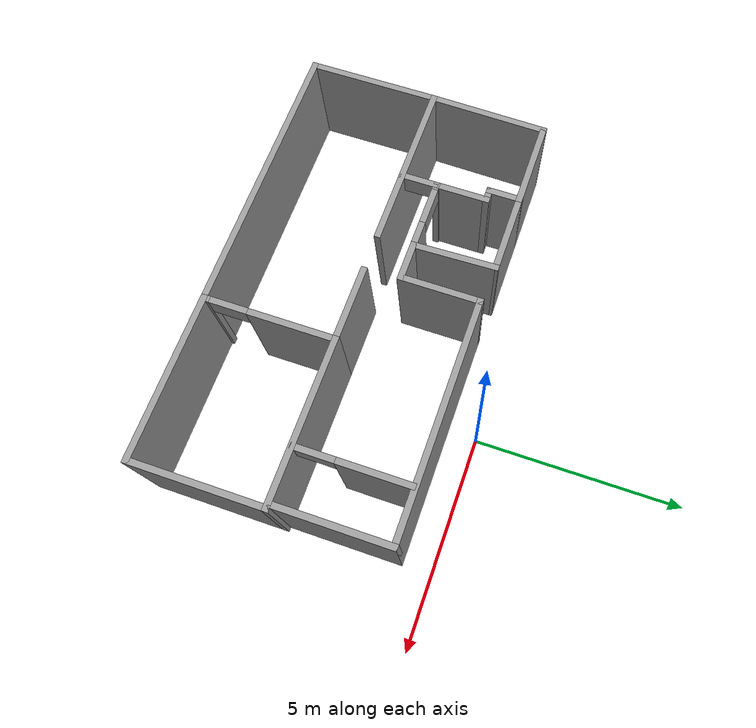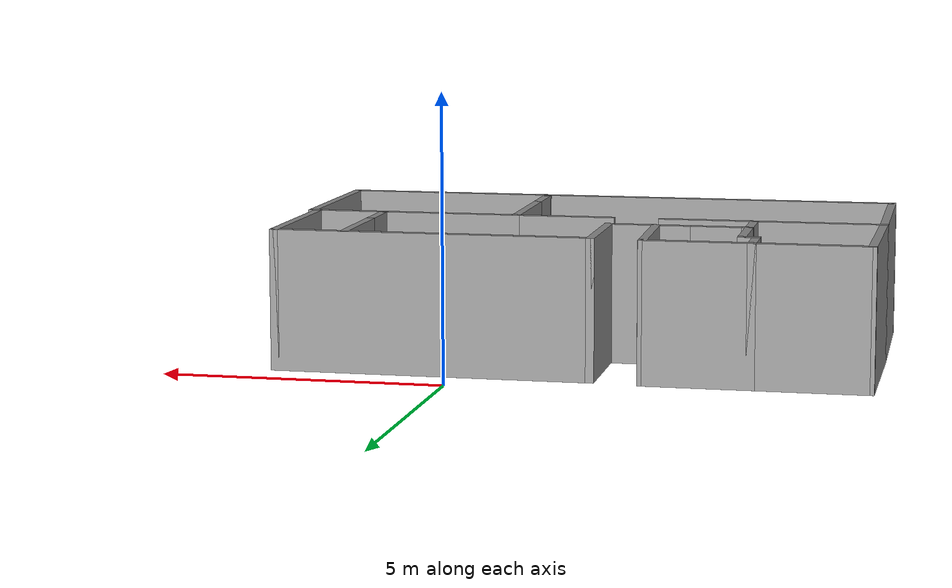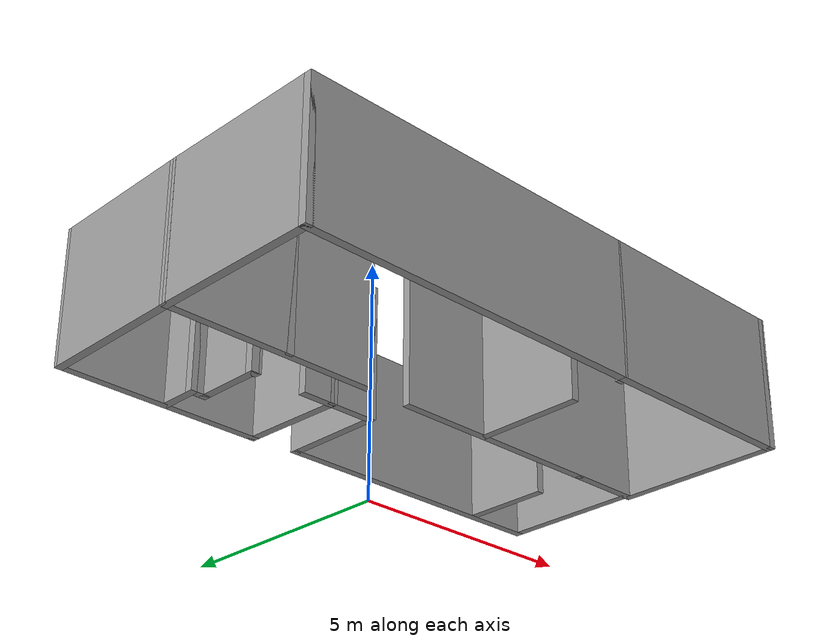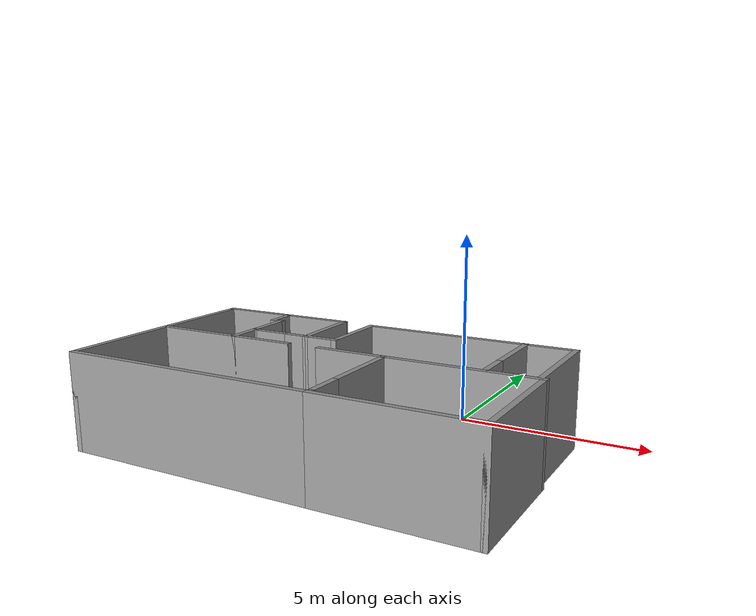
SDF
<?xml version='1.0'?>
<sdf version='1.7'>
  <model name='living_room'>
    <pose>-1.95067 -3.3225 0 0 -0 0</pose>
    <link name='Wall_10'>
      <collision name='Wall_10_Collision'>
        <geometry>
          <box>
            <size>4.1 0.15 2.5</size>
          </box>
        </geometry>
        <pose>0 0 1.25 0 -0 0</pose>
      </collision>
      <visual name='Wall_10_Visual'>
        <pose>0 0 1.25 0 -0 0</pose>
        <geometry>
          <box>
            <size>4.1 0.15 2.5</size>
          </box>
        </geometry>
        <material>
          <script>
            <uri>file://media/materials/scripts/gazebo.material</uri>
            <name>Gazebo/Grey</name>
          </script>
          <ambient>1 1 1 1</ambient>
        </material>
        <meta>
          <layer>0</layer>
        </meta>
      </visual>
      <pose>-3.27433 -0.1475 0 0 -0 0</pose>
    </link>
    <link name='Wall_17'>
      <collision name='Wall_17_Collision'>
        <geometry>
          <box>
            <size>6.8 0.15 2.5</size>
          </box>
        </geometry>
        <pose>0 0 1.25 0 -0 0</pose>
      </collision>
      <visual name='Wall_17_Visual'>
        <pose>0 0 1.25 0 -0 0</pose>
        <geometry>
          <box>
            <size>6.8 0.15 2.5</size>
          </box>
        </geometry>
        <material>
          <script>
            <uri>file://media/materials/scripts/gazebo.material</uri>
            <name>Gazebo/Grey</name>
          </script>
          <ambient>1 1 1 1</ambient>
        </material>
        <meta>
          <layer>0</layer>
        </meta>
      </visual>
      <pose>-1.92433 -3.2475 0 0 -0 0</pose>
    </link>
    <link name='Wall_20'>
      <pose>1.40067 -1.6975 0 0 -0 1.5708</pose>
      <visual name='Wall_20_Visual_0'>
        <pose>-1.5175 0 1.25 0 -0 0</pose>
        <geometry>
          <box>
            <size>0.215 0.15 2.5</size>
          </box>
        </geometry>
        <material>
          <script>
            <uri>file://media/materials/scripts/gazebo.material</uri>
            <name>Gazebo/Grey</name>
          </script>
          <ambient>1 1 1 1</ambient>
        </material>
        <meta>
          <layer>0</layer>
        </meta>
      </visual>
      <collision name='Wall_20_Collision_0'>
        <geometry>
          <box>
            <size>0.215 0.15 2.5</size>
          </box>
        </geometry>
        <pose>-1.5175 0 1.25 0 -0 0</pose>
      </collision>
      <visual name='Wall_20_Visual_1'>
        <pose>0.5575 0 1.25 0 -0 0</pose>
        <geometry>
          <box>
            <size>2.135 0.15 2.5</size>
          </box>
        </geometry>
        <material>
          <script>
            <uri>file://media/materials/scripts/gazebo.material</uri>
            <name>Gazebo/Grey</name>
          </script>
          <ambient>1 1 1 1</ambient>
        </material>
        <meta>
          <layer>0</layer>
        </meta>
      </visual>
      <collision name='Wall_20_Collision_1'>
        <geometry>
          <box>
            <size>2.135 0.15 2.5</size>
          </box>
        </geometry>
        <pose>0.5575 0 1.25 0 -0 0</pose>
      </collision>
      <visual name='Wall_20_Visual_2'>
        <pose>-0.96 0 2.25 0 -0 0</pose>
        <geometry>
          <box>
            <size>0.9 0.15 0.5</size>
          </box>
        </geometry>
        <material>
          <script>
            <uri>file://media/materials/scripts/gazebo.material</uri>
            <name>Gazebo/Grey</name>
          </script>
          <ambient>1 1 1 1</ambient>
        </material>
        <meta>
          <layer>0</layer>
        </meta>
      </visual>
      <collision name='Wall_20_Collision_2'>
        <geometry>
          <box>
            <size>0.9 0.15 0.5</size>
          </box>
        </geometry>
        <pose>-0.96 0 2.25 0 -0 0</pose>
      </collision>
    </link>
    <link name='Wall_21'>
      <collision name='Wall_21_Collision'>
        <geometry>
          <box>
            <size>1.9 0.15 2.5</size>
          </box>
        </geometry>
        <pose>0 0 1.25 0 -0 0</pose>
      </collision>
      <visual name='Wall_21_Visual'>
        <pose>0 0 1.25 0 -0 0</pose>
        <geometry>
          <box>
            <size>1.9 0.15 2.5</size>
          </box>
        </geometry>
        <material>
          <script>
            <uri>file://media/materials/scripts/gazebo.material</uri>
            <name>Gazebo/Grey</name>
          </script>
          <ambient>1 1 1 1</ambient>
        </material>
        <meta>
          <layer>0</layer>
        </meta>
      </visual>
      <pose>0.525668 -0.1475 0 0 -0 3.14159</pose>
    </link>
    <link name='Wall_23'>
      <collision name='Wall_23_Collision'>
        <geometry>
          <box>
            <size>4 0.15 2.5</size>
          </box>
        </geometry>
        <pose>0 0 1.25 0 -0 0</pose>
      </collision>
      <visual name='Wall_23_Visual'>
        <pose>0 0 1.25 0 -0 0</pose>
        <geometry>
          <box>
            <size>4 0.15 2.5</size>
          </box>
        </geometry>
        <material>
          <script>
            <uri>file://media/materials/scripts/gazebo.material</uri>
            <name>Gazebo/Grey</name>
          </script>
          <ambient>1 1 1 1</ambient>
        </material>
        <meta>
          <layer>0</layer>
        </meta>
      </visual>
      <pose>3.32567 -3.2475 0 0 -0 0</pose>
    </link>
    <link name='Wall_24'>
      <collision name='Wall_24_Collision'>
        <geometry>
          <box>
            <size>3.25 0.15 2.5</size>
          </box>
        </geometry>
        <pose>0 0 1.25 0 -0 0</pose>
      </collision>
      <visual name='Wall_24_Visual'>
        <pose>0 0 1.25 0 -0 0</pose>
        <geometry>
          <box>
            <size>3.25 0.15 2.5</size>
          </box>
        </geometry>
        <material>
          <script>
            <uri>file://media/materials/scripts/gazebo.material</uri>
            <name>Gazebo/Grey</name>
          </script>
          <ambient>1 1 1 1</ambient>
        </material>
        <meta>
          <layer>0</layer>
        </meta>
      </visual>
      <pose>5.25067 -1.6975 0 0 -0 1.5708</pose>
    </link>
    <link name='Wall_25'>
      <collision name='Wall_25_Collision'>
        <geometry>
          <box>
            <size>4 0.15 2.5</size>
          </box>
        </geometry>
        <pose>0 0 1.25 0 -0 0</pose>
      </collision>
      <visual name='Wall_25_Visual'>
        <pose>0 0 1.25 0 -0 0</pose>
        <geometry>
          <box>
            <size>4 0.15 2.5</size>
          </box>
        </geometry>
        <material>
          <script>
            <uri>file://media/materials/scripts/gazebo.material</uri>
            <name>Gazebo/Grey</name>
          </script>
          <ambient>1 1 1 1</ambient>
        </material>
        <meta>
          <layer>0</layer>
        </meta>
      </visual>
      <pose>3.32567 -0.1475 0 0 -0 3.14159</pose>
    </link>
    <link name='Wall_33'>
      <pose>-2.12433 0.7025 0 0 -0 3.14159</pose>
      <visual name='Wall_33_Visual_0'>
        <pose>-0.551716 0 1.25 0 -0 0</pose>
        <geometry>
          <box>
            <size>0.696567 0.15 2.5</size>
          </box>
        </geometry>
        <material>
          <script>
            <uri>file://media/materials/scripts/gazebo.material</uri>
            <name>Gazebo/Grey</name>
          </script>
          <ambient>1 1 1 1</ambient>
        </material>
        <meta>
          <layer>0</layer>
        </meta>
      </visual>
      <collision name='Wall_33_Collision_0'>
        <geometry>
          <box>
            <size>0.696567 0.15 2.5</size>
          </box>
        </geometry>
        <pose>-0.551716 0 1.25 0 -0 0</pose>
      </collision>
      <visual name='Wall_33_Visual_1'>
        <pose>0.798284 0 1.25 0 -0 0</pose>
        <geometry>
          <box>
            <size>0.203433 0.15 2.5</size>
          </box>
        </geometry>
        <material>
          <script>
            <uri>file://media/materials/scripts/gazebo.material</uri>
            <name>Gazebo/Grey</name>
          </script>
          <ambient>1 1 1 1</ambient>
        </material>
        <meta>
          <layer>0</layer>
        </meta>
      </visual>
      <collision name='Wall_33_Collision_1'>
        <geometry>
          <box>
            <size>0.203433 0.15 2.5</size>
          </box>
        </geometry>
        <pose>0.798284 0 1.25 0 -0 0</pose>
      </collision>
      <visual name='Wall_33_Visual_2'>
        <pose>0.246567 0 2.25 0 -0 0</pose>
        <geometry>
          <box>
            <size>0.9 0.15 0.5</size>
          </box>
        </geometry>
        <material>
          <script>
            <uri>file://media/materials/scripts/gazebo.material</uri>
            <name>Gazebo/Grey</name>
          </script>
          <ambient>1 1 1 1</ambient>
        </material>
        <meta>
          <layer>0</layer>
        </meta>
      </visual>
      <collision name='Wall_33_Collision_2'>
        <geometry>
          <box>
            <size>0.9 0.15 0.5</size>
          </box>
        </geometry>
        <pose>0.246567 0 2.25 0 -0 0</pose>
      </collision>
    </link>
    <link name='Wall_35'>
      <pose>-2.94933 0.2775 0 0 -0 -1.5708</pose>
      <visual name='Wall_35_Visual_0'>
        <pose>-0.477932 0 1.25 0 -0 0</pose>
        <geometry>
          <box>
            <size>0.044137 0.15 2.5</size>
          </box>
        </geometry>
        <material>
          <script>
            <uri>file://media/materials/scripts/gazebo.material</uri>
            <name>Gazebo/Grey</name>
          </script>
          <ambient>1 1 1 1</ambient>
        </material>
        <meta>
          <layer>0</layer>
        </meta>
      </visual>
      <collision name='Wall_35_Collision_0'>
        <geometry>
          <box>
            <size>0.044137 0.15 2.5</size>
          </box>
        </geometry>
        <pose>-0.477932 0 1.25 0 -0 0</pose>
      </collision>
      <visual name='Wall_35_Visual_1'>
        <pose>0.472068 0 1.25 0 -0 0</pose>
        <geometry>
          <box>
            <size>0.055863 0.15 2.5</size>
          </box>
        </geometry>
        <material>
          <script>
            <uri>file://media/materials/scripts/gazebo.material</uri>
            <name>Gazebo/Grey</name>
          </script>
          <ambient>1 1 1 1</ambient>
        </material>
        <meta>
          <layer>0</layer>
        </meta>
      </visual>
      <collision name='Wall_35_Collision_1'>
        <geometry>
          <box>
            <size>0.055863 0.15 2.5</size>
          </box>
        </geometry>
        <pose>0.472068 0 1.25 0 -0 0</pose>
      </collision>
      <visual name='Wall_35_Visual_2'>
        <pose>-0.005863 0 2.25 0 -0 0</pose>
        <geometry>
          <box>
            <size>0.9 0.15 0.5</size>
          </box>
        </geometry>
        <material>
          <script>
            <uri>file://media/materials/scripts/gazebo.material</uri>
            <name>Gazebo/Grey</name>
          </script>
          <ambient>1 1 1 1</ambient>
        </material>
        <meta>
          <layer>0</layer>
        </meta>
      </visual>
      <collision name='Wall_35_Collision_2'>
        <geometry>
          <box>
            <size>0.9 0.15 0.5</size>
          </box>
        </geometry>
        <pose>-0.005863 0 2.25 0 -0 0</pose>
      </collision>
    </link>
    <link name='Wall_38'>
      <collision name='Wall_38_Collision'>
        <geometry>
          <box>
            <size>1.36 0.15 2.5</size>
          </box>
        </geometry>
        <pose>0 0 1.25 0 -0 0</pose>
      </collision>
      <visual name='Wall_38_Visual'>
        <pose>0 0 1.25 0 -0 0</pose>
        <geometry>
          <box>
            <size>1.36 0.15 2.5</size>
          </box>
        </geometry>
        <material>
          <script>
            <uri>file://media/materials/scripts/gazebo.material</uri>
            <name>Gazebo/Grey</name>
          </script>
          <ambient>1 1 1 1</ambient>
        </material>
        <meta>
          <layer>0</layer>
        </meta>
      </visual>
      <pose>-2.94933 1.3075 0 0 -0 1.5708</pose>
    </link>
    <link name='Wall_42'>
      <collision name='Wall_42_Collision'>
        <geometry>
          <box>
            <size>0.4 0.15 2.5</size>
          </box>
        </geometry>
        <pose>0 0 1.25 0 -0 0</pose>
      </collision>
      <visual name='Wall_42_Visual'>
        <pose>0 0 1.25 0 -0 0</pose>
        <geometry>
          <box>
            <size>0.4 0.15 2.5</size>
          </box>
        </geometry>
        <material>
          <script>
            <uri>file://media/materials/scripts/gazebo.material</uri>
            <name>Gazebo/Grey</name>
          </script>
          <ambient>1 1 1 1</ambient>
        </material>
        <meta>
          <layer>0</layer>
        </meta>
      </visual>
      <pose>-3.07433 1.9125 0 0 -0 3.14159</pose>
    </link>
    <link name='Wall_45'>
      <collision name='Wall_45_Collision'>
        <geometry>
          <box>
            <size>0.87 0.15 2.5</size>
          </box>
        </geometry>
        <pose>0 0 1.25 0 -0 0</pose>
      </collision>
      <visual name='Wall_45_Visual'>
        <pose>0 0 1.25 0 -0 0</pose>
        <geometry>
          <box>
            <size>0.87 0.15 2.5</size>
          </box>
        </geometry>
        <material>
          <script>
            <uri>file://media/materials/scripts/gazebo.material</uri>
            <name>Gazebo/Grey</name>
          </script>
          <ambient>1 1 1 1</ambient>
        </material>
        <meta>
          <layer>0</layer>
        </meta>
      </visual>
      <pose>-3.19933 2.2725 0 0 -0 1.5708</pose>
    </link>
    <link name='Wall_52'>
      <collision name='Wall_52_Collision'>
        <geometry>
          <box>
            <size>2.15 0.15 2.5</size>
          </box>
        </geometry>
        <pose>0 0 1.25 0 -0 0</pose>
      </collision>
      <visual name='Wall_52_Visual'>
        <pose>0 0 1.25 0 -0 0</pose>
        <geometry>
          <box>
            <size>2.15 0.15 2.5</size>
          </box>
        </geometry>
        <material>
          <script>
            <uri>file://media/materials/scripts/gazebo.material</uri>
            <name>Gazebo/Grey</name>
          </script>
          <ambient>1 1 1 1</ambient>
        </material>
        <meta>
          <layer>0</layer>
        </meta>
      </visual>
      <pose>-4.19933 2.6325 0 0 -0 3.14159</pose>
    </link>
    <link name='Wall_54'>
      <collision name='Wall_54_Collision'>
        <geometry>
          <box>
            <size>2.93045 0.15 2.5</size>
          </box>
        </geometry>
        <pose>0 0 1.25 0 -0 0</pose>
      </collision>
      <visual name='Wall_54_Visual'>
        <pose>0 0 1.25 0 -0 0</pose>
        <geometry>
          <box>
            <size>2.93045 0.15 2.5</size>
          </box>
        </geometry>
        <material>
          <script>
            <uri>file://media/materials/scripts/gazebo.material</uri>
            <name>Gazebo/Grey</name>
          </script>
          <ambient>1 1 1 1</ambient>
        </material>
        <meta>
          <layer>0</layer>
        </meta>
      </visual>
      <pose>-5.22433 1.2425 0 0 -0 -1.58878</pose>
    </link>
    <link name='Wall_60'>
      <collision name='Wall_60_Collision'>
        <geometry>
          <box>
            <size>2 0.15 2.5</size>
          </box>
        </geometry>
        <pose>0 0 1.25 0 -0 0</pose>
      </collision>
      <visual name='Wall_60_Visual'>
        <pose>0 0 1.25 0 -0 0</pose>
        <geometry>
          <box>
            <size>2 0.15 2.5</size>
          </box>
        </geometry>
        <material>
          <script>
            <uri>file://media/materials/scripts/gazebo.material</uri>
            <name>Gazebo/Grey</name>
          </script>
          <ambient>1 1 1 1</ambient>
        </material>
        <meta>
          <layer>0</layer>
        </meta>
      </visual>
      <pose>-2.27433 2.6325 0 0 -0 0</pose>
    </link>
    <link name='Wall_61'>
      <collision name='Wall_61_Collision'>
        <geometry>
          <box>
            <size>2.08065 0.15 2.5</size>
          </box>
        </geometry>
        <pose>0 0 1.25 0 -0 0</pose>
      </collision>
      <visual name='Wall_61_Visual'>
        <pose>0 0 1.25 0 -0 0</pose>
        <geometry>
          <box>
            <size>2.08065 0.15 2.5</size>
          </box>
        </geometry>
        <material>
          <script>
            <uri>file://media/materials/scripts/gazebo.material</uri>
            <name>Gazebo/Grey</name>
          </script>
          <ambient>1 1 1 1</ambient>
        </material>
        <meta>
          <layer>0</layer>
        </meta>
      </visual>
      <pose>-1.32433 1.6675 0 0 -0 -1.54489</pose>
    </link>
    <link name='Wall_63'>
      <collision name='Wall_63_Collision'>
        <geometry>
          <box>
            <size>1 0.15 2.5</size>
          </box>
        </geometry>
        <pose>0 0 1.25 0 -0 0</pose>
      </collision>
      <visual name='Wall_63_Visual'>
        <pose>0 0 1.25 0 -0 0</pose>
        <geometry>
          <box>
            <size>1 0.15 2.5</size>
          </box>
        </geometry>
        <material>
          <script>
            <uri>file://media/materials/scripts/gazebo.material</uri>
            <name>Gazebo/Grey</name>
          </script>
          <ambient>1 1 1 1</ambient>
        </material>
        <meta>
          <layer>0</layer>
        </meta>
      </visual>
      <pose>-0.874332 0.7025 0 0 -0 0</pose>
    </link>
    <link name='Wall_64'>
      <collision name='Wall_64_Collision'>
        <geometry>
          <box>
            <size>2 0.15 2.5</size>
          </box>
        </geometry>
        <pose>0 0 1.25 0 -0 0</pose>
      </collision>
      <visual name='Wall_64_Visual'>
        <pose>0 0 1.25 0 -0 0</pose>
        <geometry>
          <box>
            <size>2 0.15 2.5</size>
          </box>
        </geometry>
        <material>
          <script>
            <uri>file://media/materials/scripts/gazebo.material</uri>
            <name>Gazebo/Grey</name>
          </script>
          <ambient>1 1 1 1</ambient>
        </material>
        <meta>
          <layer>0</layer>
        </meta>
      </visual>
      <pose>-0.449332 1.6275 0 0 -0 1.5708</pose>
    </link>
    <link name='Wall_65'>
      <collision name='Wall_65_Collision'>
        <geometry>
          <box>
            <size>5.75 0.15 2.5</size>
          </box>
        </geometry>
        <pose>0 0 1.25 0 -0 0</pose>
      </collision>
      <visual name='Wall_65_Visual'>
        <pose>0 0 1.25 0 -0 0</pose>
        <geometry>
          <box>
            <size>5.75 0.15 2.5</size>
          </box>
        </geometry>
        <material>
          <script>
            <uri>file://media/materials/scripts/gazebo.material</uri>
            <name>Gazebo/Grey</name>
          </script>
          <ambient>1 1 1 1</ambient>
        </material>
        <meta>
          <layer>0</layer>
        </meta>
      </visual>
      <pose>2.35067 2.5525 0 0 -0 0</pose>
    </link>
    <link name='Wall_66'>
      <collision name='Wall_66_Collision'>
        <geometry>
          <box>
            <size>2.75 0.15 2.5</size>
          </box>
        </geometry>
        <pose>0 0 1.25 0 -0 0</pose>
      </collision>
      <visual name='Wall_66_Visual'>
        <pose>0 0 1.25 0 -0 0</pose>
        <geometry>
          <box>
            <size>2.75 0.15 2.5</size>
          </box>
        </geometry>
        <material>
          <script>
            <uri>file://media/materials/scripts/gazebo.material</uri>
            <name>Gazebo/Grey</name>
          </script>
          <ambient>1 1 1 1</ambient>
        </material>
        <meta>
          <layer>0</layer>
        </meta>
      </visual>
      <pose>5.15067 1.2525 0 0 -0 -1.5708</pose>
    </link>
    <link name='Wall_68'>
      <pose>3.89257 1.1921 0 0 -0 -1.5708</pose>
      <visual name='Wall_68_Visual_0'>
        <pose>-0.499039 0 1.25 0 -0 0</pose>
        <geometry>
          <box>
            <size>1.75192 0.15 2.5</size>
          </box>
        </geometry>
        <material>
          <script>
            <uri>file://media/materials/scripts/gazebo.material</uri>
            <name>Gazebo/Grey</name>
          </script>
          <ambient>1 1 1 1</ambient>
        </material>
        <meta>
          <layer>0</layer>
        </meta>
      </visual>
      <collision name='Wall_68_Collision_0'>
        <geometry>
          <box>
            <size>1.75192 0.15 2.5</size>
          </box>
        </geometry>
        <pose>-0.499039 0 1.25 0 -0 0</pose>
      </collision>
      <visual name='Wall_68_Visual_1'>
        <pose>1.32596 0 1.25 0 -0 0</pose>
        <geometry>
          <box>
            <size>0.098078 0.15 2.5</size>
          </box>
        </geometry>
        <material>
          <script>
            <uri>file://media/materials/scripts/gazebo.material</uri>
            <name>Gazebo/Grey</name>
          </script>
          <ambient>1 1 1 1</ambient>
        </material>
        <meta>
          <layer>0</layer>
        </meta>
      </visual>
      <collision name='Wall_68_Collision_1'>
        <geometry>
          <box>
            <size>0.098078 0.15 2.5</size>
          </box>
        </geometry>
        <pose>1.32596 0 1.25 0 -0 0</pose>
      </collision>
      <visual name='Wall_68_Visual_2'>
        <pose>0.826922 0 2.25 0 -0 0</pose>
        <geometry>
          <box>
            <size>0.9 0.15 0.5</size>
          </box>
        </geometry>
        <material>
          <script>
            <uri>file://media/materials/scripts/gazebo.material</uri>
            <name>Gazebo/Grey</name>
          </script>
          <ambient>1 1 1 1</ambient>
        </material>
        <meta>
          <layer>0</layer>
        </meta>
      </visual>
      <collision name='Wall_68_Collision_2'>
        <geometry>
          <box>
            <size>0.9 0.15 0.5</size>
          </box>
        </geometry>
        <pose>0.826922 0 2.25 0 -0 0</pose>
      </collision>
    </link>
    <link name='Wall_9'>
      <collision name='Wall_9_Collision'>
        <geometry>
          <box>
            <size>3.25 0.15 2.5</size>
          </box>
        </geometry>
        <pose>0 0 1.25 0 -0 0</pose>
      </collision>
      <visual name='Wall_9_Visual'>
        <pose>0 0 1.25 0 -0 0</pose>
        <geometry>
          <box>
            <size>3.25 0.15 2.5</size>
          </box>
        </geometry>
        <material>
          <script>
            <uri>file://media/materials/scripts/gazebo.material</uri>
            <name>Gazebo/Grey</name>
          </script>
          <ambient>1 1 1 1</ambient>
        </material>
        <meta>
          <layer>0</layer>
        </meta>
      </visual>
      <pose>-5.24933 -1.6975 0 0 -0 1.5708</pose>
    </link>
    <static>1</static>
  </model>
</sdf>
